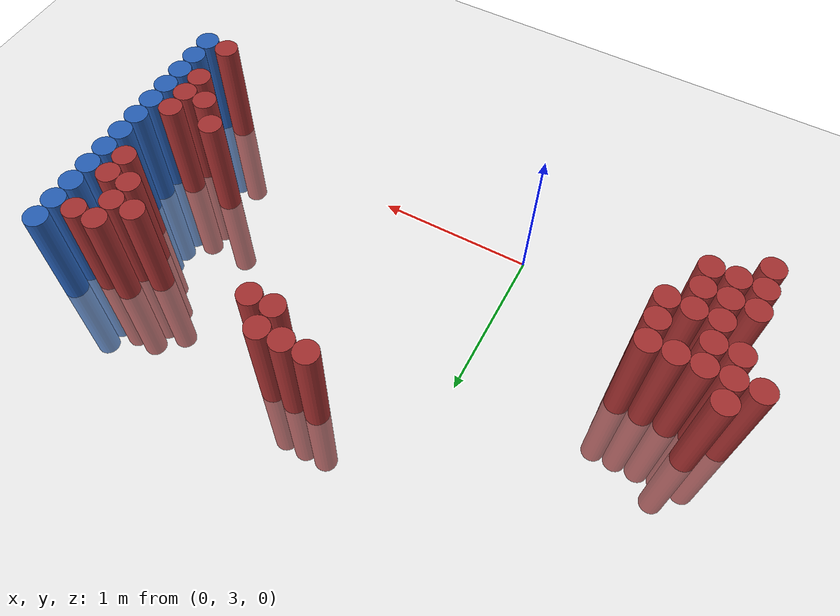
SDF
<sdf version="1.6">
 <world name="default">
  <model name="ground_plane">
   <static>1</static>
   <link name="link">
    <collision name="collision">
     <geometry><plane><normal>0 0 1</normal><size>100 100</size></plane></geometry>
     <surface><friction><ode><mu>100</mu><mu2>50</mu2></ode></friction></surface>
    </collision>
    <visual name="visual">
     <cast_shadows>0</cast_shadows>
     <geometry><plane><normal>0 0 1</normal><size>100 100</size></plane></geometry>
     <material>
      <script><uri>file://media/materials/scripts/gazebo.material</uri><name>Gazebo/Grey</name></script>
     </material>
    </visual>
   </link>
  </model>
  <model name="unit_cylinder_151">
   <static>1</static>
   <pose>-1.475000 3.625000 0.000000 0.000000 0.000000 0.000000</pose>
   <link name="link">
    <inertial>
     <mass>1</mass>
     <inertia><ixx>0.145833</ixx><ixy>0</ixy><ixz>0</ixz><iyy>0.145833</iyy><iyz>0</iyz><izz>0.125</izz></inertia>
    </inertial>
    <collision name="collision">
     <geometry><cylinder><radius>0.075000</radius><length>1.5</length></cylinder></geometry>
    </collision>
    <visual name="visual">
     <geometry><cylinder><radius>0.075000</radius><length>1.5</length></cylinder></geometry>
     <material>
      <ambient>0.648000 0.192000 0.192000 1</ambient>
      <diffuse>0.648000 0.192000 0.192000 1</diffuse>
     </material>
     <material>
      <script><name>Gazebo/Grey</name><uri>file://media/materials/scripts/gazebo.material</uri></script>
     </material>
    </visual>
   </link>
  </model>
  <model name="unit_cylinder_153">
   <static>1</static>
   <pose>-1.325000 2.875000 0.000000 0.000000 0.000000 0.000000</pose>
   <link name="link">
    <inertial>
     <mass>1</mass>
     <inertia><ixx>0.145833</ixx><ixy>0</ixy><ixz>0</ixz><iyy>0.145833</iyy><iyz>0</iyz><izz>0.125</izz></inertia>
    </inertial>
    <collision name="collision">
     <geometry><cylinder><radius>0.075000</radius><length>1.5</length></cylinder></geometry>
    </collision>
    <visual name="visual">
     <geometry><cylinder><radius>0.075000</radius><length>1.5</length></cylinder></geometry>
     <material>
      <ambient>0.648000 0.192000 0.192000 1</ambient>
      <diffuse>0.648000 0.192000 0.192000 1</diffuse>
     </material>
     <material>
      <script><name>Gazebo/Grey</name><uri>file://media/materials/scripts/gazebo.material</uri></script>
     </material>
    </visual>
   </link>
  </model>
  <model name="unit_cylinder_154">
   <static>1</static>
   <pose>-1.325000 3.025000 0.000000 0.000000 0.000000 0.000000</pose>
   <link name="link">
    <inertial>
     <mass>1</mass>
     <inertia><ixx>0.145833</ixx><ixy>0</ixy><ixz>0</ixz><iyy>0.145833</iyy><iyz>0</iyz><izz>0.125</izz></inertia>
    </inertial>
    <collision name="collision">
     <geometry><cylinder><radius>0.075000</radius><length>1.5</length></cylinder></geometry>
    </collision>
    <visual name="visual">
     <geometry><cylinder><radius>0.075000</radius><length>1.5</length></cylinder></geometry>
     <material>
      <ambient>0.648000 0.192000 0.192000 1</ambient>
      <diffuse>0.648000 0.192000 0.192000 1</diffuse>
     </material>
     <material>
      <script><name>Gazebo/Grey</name><uri>file://media/materials/scripts/gazebo.material</uri></script>
     </material>
    </visual>
   </link>
  </model>
  <model name="unit_cylinder_155">
   <static>1</static>
   <pose>-1.325000 3.175000 0.000000 0.000000 0.000000 0.000000</pose>
   <link name="link">
    <inertial>
     <mass>1</mass>
     <inertia><ixx>0.145833</ixx><ixy>0</ixy><ixz>0</ixz><iyy>0.145833</iyy><iyz>0</iyz><izz>0.125</izz></inertia>
    </inertial>
    <collision name="collision">
     <geometry><cylinder><radius>0.075000</radius><length>1.5</length></cylinder></geometry>
    </collision>
    <visual name="visual">
     <geometry><cylinder><radius>0.075000</radius><length>1.5</length></cylinder></geometry>
     <material>
      <ambient>0.648000 0.192000 0.192000 1</ambient>
      <diffuse>0.648000 0.192000 0.192000 1</diffuse>
     </material>
     <material>
      <script><name>Gazebo/Grey</name><uri>file://media/materials/scripts/gazebo.material</uri></script>
     </material>
    </visual>
   </link>
  </model>
  <model name="unit_cylinder_156">
   <static>1</static>
   <pose>-1.325000 3.475000 0.000000 0.000000 0.000000 0.000000</pose>
   <link name="link">
    <inertial>
     <mass>1</mass>
     <inertia><ixx>0.145833</ixx><ixy>0</ixy><ixz>0</ixz><iyy>0.145833</iyy><iyz>0</iyz><izz>0.125</izz></inertia>
    </inertial>
    <collision name="collision">
     <geometry><cylinder><radius>0.075000</radius><length>1.5</length></cylinder></geometry>
    </collision>
    <visual name="visual">
     <geometry><cylinder><radius>0.075000</radius><length>1.5</length></cylinder></geometry>
     <material>
      <ambient>0.648000 0.192000 0.192000 1</ambient>
      <diffuse>0.648000 0.192000 0.192000 1</diffuse>
     </material>
     <material>
      <script><name>Gazebo/Grey</name><uri>file://media/materials/scripts/gazebo.material</uri></script>
     </material>
    </visual>
   </link>
  </model>
  <model name="unit_cylinder_157">
   <static>1</static>
   <pose>-1.325000 3.625000 0.000000 0.000000 0.000000 0.000000</pose>
   <link name="link">
    <inertial>
     <mass>1</mass>
     <inertia><ixx>0.145833</ixx><ixy>0</ixy><ixz>0</ixz><iyy>0.145833</iyy><iyz>0</iyz><izz>0.125</izz></inertia>
    </inertial>
    <collision name="collision">
     <geometry><cylinder><radius>0.075000</radius><length>1.5</length></cylinder></geometry>
    </collision>
    <visual name="visual">
     <geometry><cylinder><radius>0.075000</radius><length>1.5</length></cylinder></geometry>
     <material>
      <ambient>0.648000 0.192000 0.192000 1</ambient>
      <diffuse>0.648000 0.192000 0.192000 1</diffuse>
     </material>
     <material>
      <script><name>Gazebo/Grey</name><uri>file://media/materials/scripts/gazebo.material</uri></script>
     </material>
    </visual>
   </link>
  </model>
  <model name="unit_cylinder_158">
   <static>1</static>
   <pose>-1.325000 3.775000 0.000000 0.000000 0.000000 0.000000</pose>
   <link name="link">
    <inertial>
     <mass>1</mass>
     <inertia><ixx>0.145833</ixx><ixy>0</ixy><ixz>0</ixz><iyy>0.145833</iyy><iyz>0</iyz><izz>0.125</izz></inertia>
    </inertial>
    <collision name="collision">
     <geometry><cylinder><radius>0.075000</radius><length>1.5</length></cylinder></geometry>
    </collision>
    <visual name="visual">
     <geometry><cylinder><radius>0.075000</radius><length>1.5</length></cylinder></geometry>
     <material>
      <ambient>0.648000 0.192000 0.192000 1</ambient>
      <diffuse>0.648000 0.192000 0.192000 1</diffuse>
     </material>
     <material>
      <script><name>Gazebo/Grey</name><uri>file://media/materials/scripts/gazebo.material</uri></script>
     </material>
    </visual>
   </link>
  </model>
  <model name="unit_cylinder_159">
   <static>1</static>
   <pose>-1.175000 3.025000 0.000000 0.000000 0.000000 0.000000</pose>
   <link name="link">
    <inertial>
     <mass>1</mass>
     <inertia><ixx>0.145833</ixx><ixy>0</ixy><ixz>0</ixz><iyy>0.145833</iyy><iyz>0</iyz><izz>0.125</izz></inertia>
    </inertial>
    <collision name="collision">
     <geometry><cylinder><radius>0.075000</radius><length>1.5</length></cylinder></geometry>
    </collision>
    <visual name="visual">
     <geometry><cylinder><radius>0.075000</radius><length>1.5</length></cylinder></geometry>
     <material>
      <ambient>0.648000 0.192000 0.192000 1</ambient>
      <diffuse>0.648000 0.192000 0.192000 1</diffuse>
     </material>
     <material>
      <script><name>Gazebo/Grey</name><uri>file://media/materials/scripts/gazebo.material</uri></script>
     </material>
    </visual>
   </link>
  </model>
  <model name="unit_cylinder_160">
   <static>1</static>
   <pose>-1.175000 3.175000 0.000000 0.000000 0.000000 0.000000</pose>
   <link name="link">
    <inertial>
     <mass>1</mass>
     <inertia><ixx>0.145833</ixx><ixy>0</ixy><ixz>0</ixz><iyy>0.145833</iyy><iyz>0</iyz><izz>0.125</izz></inertia>
    </inertial>
    <collision name="collision">
     <geometry><cylinder><radius>0.075000</radius><length>1.5</length></cylinder></geometry>
    </collision>
    <visual name="visual">
     <geometry><cylinder><radius>0.075000</radius><length>1.5</length></cylinder></geometry>
     <material>
      <ambient>0.648000 0.192000 0.192000 1</ambient>
      <diffuse>0.648000 0.192000 0.192000 1</diffuse>
     </material>
     <material>
      <script><name>Gazebo/Grey</name><uri>file://media/materials/scripts/gazebo.material</uri></script>
     </material>
    </visual>
   </link>
  </model>
  <model name="unit_cylinder_161">
   <static>1</static>
   <pose>-1.175000 3.325000 0.000000 0.000000 0.000000 0.000000</pose>
   <link name="link">
    <inertial>
     <mass>1</mass>
     <inertia><ixx>0.145833</ixx><ixy>0</ixy><ixz>0</ixz><iyy>0.145833</iyy><iyz>0</iyz><izz>0.125</izz></inertia>
    </inertial>
    <collision name="collision">
     <geometry><cylinder><radius>0.075000</radius><length>1.5</length></cylinder></geometry>
    </collision>
    <visual name="visual">
     <geometry><cylinder><radius>0.075000</radius><length>1.5</length></cylinder></geometry>
     <material>
      <ambient>0.648000 0.192000 0.192000 1</ambient>
      <diffuse>0.648000 0.192000 0.192000 1</diffuse>
     </material>
     <material>
      <script><name>Gazebo/Grey</name><uri>file://media/materials/scripts/gazebo.material</uri></script>
     </material>
    </visual>
   </link>
  </model>
  <model name="unit_cylinder_162">
   <static>1</static>
   <pose>-1.175000 3.475000 0.000000 0.000000 0.000000 0.000000</pose>
   <link name="link">
    <inertial>
     <mass>1</mass>
     <inertia><ixx>0.145833</ixx><ixy>0</ixy><ixz>0</ixz><iyy>0.145833</iyy><iyz>0</iyz><izz>0.125</izz></inertia>
    </inertial>
    <collision name="collision">
     <geometry><cylinder><radius>0.075000</radius><length>1.5</length></cylinder></geometry>
    </collision>
    <visual name="visual">
     <geometry><cylinder><radius>0.075000</radius><length>1.5</length></cylinder></geometry>
     <material>
      <ambient>0.648000 0.192000 0.192000 1</ambient>
      <diffuse>0.648000 0.192000 0.192000 1</diffuse>
     </material>
     <material>
      <script><name>Gazebo/Grey</name><uri>file://media/materials/scripts/gazebo.material</uri></script>
     </material>
    </visual>
   </link>
  </model>
  <model name="unit_cylinder_163">
   <static>1</static>
   <pose>-1.175000 3.625000 0.000000 0.000000 0.000000 0.000000</pose>
   <link name="link">
    <inertial>
     <mass>1</mass>
     <inertia><ixx>0.145833</ixx><ixy>0</ixy><ixz>0</ixz><iyy>0.145833</iyy><iyz>0</iyz><izz>0.125</izz></inertia>
    </inertial>
    <collision name="collision">
     <geometry><cylinder><radius>0.075000</radius><length>1.5</length></cylinder></geometry>
    </collision>
    <visual name="visual">
     <geometry><cylinder><radius>0.075000</radius><length>1.5</length></cylinder></geometry>
     <material>
      <ambient>0.648000 0.192000 0.192000 1</ambient>
      <diffuse>0.648000 0.192000 0.192000 1</diffuse>
     </material>
     <material>
      <script><name>Gazebo/Grey</name><uri>file://media/materials/scripts/gazebo.material</uri></script>
     </material>
    </visual>
   </link>
  </model>
  <model name="unit_cylinder_164">
   <static>1</static>
   <pose>-1.025000 3.025000 0.000000 0.000000 0.000000 0.000000</pose>
   <link name="link">
    <inertial>
     <mass>1</mass>
     <inertia><ixx>0.145833</ixx><ixy>0</ixy><ixz>0</ixz><iyy>0.145833</iyy><iyz>0</iyz><izz>0.125</izz></inertia>
    </inertial>
    <collision name="collision">
     <geometry><cylinder><radius>0.075000</radius><length>1.5</length></cylinder></geometry>
    </collision>
    <visual name="visual">
     <geometry><cylinder><radius>0.075000</radius><length>1.5</length></cylinder></geometry>
     <material>
      <ambient>0.648000 0.192000 0.192000 1</ambient>
      <diffuse>0.648000 0.192000 0.192000 1</diffuse>
     </material>
     <material>
      <script><name>Gazebo/Grey</name><uri>file://media/materials/scripts/gazebo.material</uri></script>
     </material>
    </visual>
   </link>
  </model>
  <model name="unit_cylinder_165">
   <static>1</static>
   <pose>-1.025000 3.175000 0.000000 0.000000 0.000000 0.000000</pose>
   <link name="link">
    <inertial>
     <mass>1</mass>
     <inertia><ixx>0.145833</ixx><ixy>0</ixy><ixz>0</ixz><iyy>0.145833</iyy><iyz>0</iyz><izz>0.125</izz></inertia>
    </inertial>
    <collision name="collision">
     <geometry><cylinder><radius>0.075000</radius><length>1.5</length></cylinder></geometry>
    </collision>
    <visual name="visual">
     <geometry><cylinder><radius>0.075000</radius><length>1.5</length></cylinder></geometry>
     <material>
      <ambient>0.648000 0.192000 0.192000 1</ambient>
      <diffuse>0.648000 0.192000 0.192000 1</diffuse>
     </material>
     <material>
      <script><name>Gazebo/Grey</name><uri>file://media/materials/scripts/gazebo.material</uri></script>
     </material>
    </visual>
   </link>
  </model>
  <model name="unit_cylinder_166">
   <static>1</static>
   <pose>-1.025000 3.325000 0.000000 0.000000 0.000000 0.000000</pose>
   <link name="link">
    <inertial>
     <mass>1</mass>
     <inertia><ixx>0.145833</ixx><ixy>0</ixy><ixz>0</ixz><iyy>0.145833</iyy><iyz>0</iyz><izz>0.125</izz></inertia>
    </inertial>
    <collision name="collision">
     <geometry><cylinder><radius>0.075000</radius><length>1.5</length></cylinder></geometry>
    </collision>
    <visual name="visual">
     <geometry><cylinder><radius>0.075000</radius><length>1.5</length></cylinder></geometry>
     <material>
      <ambient>0.648000 0.192000 0.192000 1</ambient>
      <diffuse>0.648000 0.192000 0.192000 1</diffuse>
     </material>
     <material>
      <script><name>Gazebo/Grey</name><uri>file://media/materials/scripts/gazebo.material</uri></script>
     </material>
    </visual>
   </link>
  </model>
  <model name="unit_cylinder_167">
   <static>1</static>
   <pose>-1.025000 3.625000 0.000000 0.000000 0.000000 0.000000</pose>
   <link name="link">
    <inertial>
     <mass>1</mass>
     <inertia><ixx>0.145833</ixx><ixy>0</ixy><ixz>0</ixz><iyy>0.145833</iyy><iyz>0</iyz><izz>0.125</izz></inertia>
    </inertial>
    <collision name="collision">
     <geometry><cylinder><radius>0.075000</radius><length>1.5</length></cylinder></geometry>
    </collision>
    <visual name="visual">
     <geometry><cylinder><radius>0.075000</radius><length>1.5</length></cylinder></geometry>
     <material>
      <ambient>0.648000 0.192000 0.192000 1</ambient>
      <diffuse>0.648000 0.192000 0.192000 1</diffuse>
     </material>
     <material>
      <script><name>Gazebo/Grey</name><uri>file://media/materials/scripts/gazebo.material</uri></script>
     </material>
    </visual>
   </link>
  </model>
  <model name="unit_cylinder_168">
   <static>1</static>
   <pose>-0.875000 3.325000 0.000000 0.000000 0.000000 0.000000</pose>
   <link name="link">
    <inertial>
     <mass>1</mass>
     <inertia><ixx>0.145833</ixx><ixy>0</ixy><ixz>0</ixz><iyy>0.145833</iyy><iyz>0</iyz><izz>0.125</izz></inertia>
    </inertial>
    <collision name="collision">
     <geometry><cylinder><radius>0.075000</radius><length>1.5</length></cylinder></geometry>
    </collision>
    <visual name="visual">
     <geometry><cylinder><radius>0.075000</radius><length>1.5</length></cylinder></geometry>
     <material>
      <ambient>0.648000 0.192000 0.192000 1</ambient>
      <diffuse>0.648000 0.192000 0.192000 1</diffuse>
     </material>
     <material>
      <script><name>Gazebo/Grey</name><uri>file://media/materials/scripts/gazebo.material</uri></script>
     </material>
    </visual>
   </link>
  </model>
  <model name="unit_cylinder_169">
   <static>1</static>
   <pose>-0.875000 3.475000 0.000000 0.000000 0.000000 0.000000</pose>
   <link name="link">
    <inertial>
     <mass>1</mass>
     <inertia><ixx>0.145833</ixx><ixy>0</ixy><ixz>0</ixz><iyy>0.145833</iyy><iyz>0</iyz><izz>0.125</izz></inertia>
    </inertial>
    <collision name="collision">
     <geometry><cylinder><radius>0.075000</radius><length>1.5</length></cylinder></geometry>
    </collision>
    <visual name="visual">
     <geometry><cylinder><radius>0.075000</radius><length>1.5</length></cylinder></geometry>
     <material>
      <ambient>0.648000 0.192000 0.192000 1</ambient>
      <diffuse>0.648000 0.192000 0.192000 1</diffuse>
     </material>
     <material>
      <script><name>Gazebo/Grey</name><uri>file://media/materials/scripts/gazebo.material</uri></script>
     </material>
    </visual>
   </link>
  </model>
  <model name="unit_cylinder_170">
   <static>1</static>
   <pose>-0.875000 3.625000 0.000000 0.000000 0.000000 0.000000</pose>
   <link name="link">
    <inertial>
     <mass>1</mass>
     <inertia><ixx>0.145833</ixx><ixy>0</ixy><ixz>0</ixz><iyy>0.145833</iyy><iyz>0</iyz><izz>0.125</izz></inertia>
    </inertial>
    <collision name="collision">
     <geometry><cylinder><radius>0.075000</radius><length>1.5</length></cylinder></geometry>
    </collision>
    <visual name="visual">
     <geometry><cylinder><radius>0.075000</radius><length>1.5</length></cylinder></geometry>
     <material>
      <ambient>0.648000 0.192000 0.192000 1</ambient>
      <diffuse>0.648000 0.192000 0.192000 1</diffuse>
     </material>
     <material>
      <script><name>Gazebo/Grey</name><uri>file://media/materials/scripts/gazebo.material</uri></script>
     </material>
    </visual>
   </link>
  </model>
  <model name="unit_cylinder_188">
   <static>1</static>
   <pose>0.625000 4.525000 0.000000 0.000000 0.000000 0.000000</pose>
   <link name="link">
    <inertial>
     <mass>1</mass>
     <inertia><ixx>0.145833</ixx><ixy>0</ixy><ixz>0</ixz><iyy>0.145833</iyy><iyz>0</iyz><izz>0.125</izz></inertia>
    </inertial>
    <collision name="collision">
     <geometry><cylinder><radius>0.075000</radius><length>1.5</length></cylinder></geometry>
    </collision>
    <visual name="visual">
     <geometry><cylinder><radius>0.075000</radius><length>1.5</length></cylinder></geometry>
     <material>
      <ambient>0.648000 0.192000 0.192000 1</ambient>
      <diffuse>0.648000 0.192000 0.192000 1</diffuse>
     </material>
     <material>
      <script><name>Gazebo/Grey</name><uri>file://media/materials/scripts/gazebo.material</uri></script>
     </material>
    </visual>
   </link>
  </model>
  <model name="unit_cylinder_189">
   <static>1</static>
   <pose>0.775000 4.525000 0.000000 0.000000 0.000000 0.000000</pose>
   <link name="link">
    <inertial>
     <mass>1</mass>
     <inertia><ixx>0.145833</ixx><ixy>0</ixy><ixz>0</ixz><iyy>0.145833</iyy><iyz>0</iyz><izz>0.125</izz></inertia>
    </inertial>
    <collision name="collision">
     <geometry><cylinder><radius>0.075000</radius><length>1.5</length></cylinder></geometry>
    </collision>
    <visual name="visual">
     <geometry><cylinder><radius>0.075000</radius><length>1.5</length></cylinder></geometry>
     <material>
      <ambient>0.648000 0.192000 0.192000 1</ambient>
      <diffuse>0.648000 0.192000 0.192000 1</diffuse>
     </material>
     <material>
      <script><name>Gazebo/Grey</name><uri>file://media/materials/scripts/gazebo.material</uri></script>
     </material>
    </visual>
   </link>
  </model>
  <model name="unit_cylinder_190">
   <static>1</static>
   <pose>0.925000 4.375000 0.000000 0.000000 0.000000 0.000000</pose>
   <link name="link">
    <inertial>
     <mass>1</mass>
     <inertia><ixx>0.145833</ixx><ixy>0</ixy><ixz>0</ixz><iyy>0.145833</iyy><iyz>0</iyz><izz>0.125</izz></inertia>
    </inertial>
    <collision name="collision">
     <geometry><cylinder><radius>0.075000</radius><length>1.5</length></cylinder></geometry>
    </collision>
    <visual name="visual">
     <geometry><cylinder><radius>0.075000</radius><length>1.5</length></cylinder></geometry>
     <material>
      <ambient>0.648000 0.192000 0.192000 1</ambient>
      <diffuse>0.648000 0.192000 0.192000 1</diffuse>
     </material>
     <material>
      <script><name>Gazebo/Grey</name><uri>file://media/materials/scripts/gazebo.material</uri></script>
     </material>
    </visual>
   </link>
  </model>
  <model name="unit_cylinder_191">
   <static>1</static>
   <pose>0.925000 4.525000 0.000000 0.000000 0.000000 0.000000</pose>
   <link name="link">
    <inertial>
     <mass>1</mass>
     <inertia><ixx>0.145833</ixx><ixy>0</ixy><ixz>0</ixz><iyy>0.145833</iyy><iyz>0</iyz><izz>0.125</izz></inertia>
    </inertial>
    <collision name="collision">
     <geometry><cylinder><radius>0.075000</radius><length>1.5</length></cylinder></geometry>
    </collision>
    <visual name="visual">
     <geometry><cylinder><radius>0.075000</radius><length>1.5</length></cylinder></geometry>
     <material>
      <ambient>0.648000 0.192000 0.192000 1</ambient>
      <diffuse>0.648000 0.192000 0.192000 1</diffuse>
     </material>
     <material>
      <script><name>Gazebo/Grey</name><uri>file://media/materials/scripts/gazebo.material</uri></script>
     </material>
    </visual>
   </link>
  </model>
  <model name="unit_cylinder_192">
   <static>1</static>
   <pose>1.075000 4.375000 0.000000 0.000000 0.000000 0.000000</pose>
   <link name="link">
    <inertial>
     <mass>1</mass>
     <inertia><ixx>0.145833</ixx><ixy>0</ixy><ixz>0</ixz><iyy>0.145833</iyy><iyz>0</iyz><izz>0.125</izz></inertia>
    </inertial>
    <collision name="collision">
     <geometry><cylinder><radius>0.075000</radius><length>1.5</length></cylinder></geometry>
    </collision>
    <visual name="visual">
     <geometry><cylinder><radius>0.075000</radius><length>1.5</length></cylinder></geometry>
     <material>
      <ambient>0.648000 0.192000 0.192000 1</ambient>
      <diffuse>0.648000 0.192000 0.192000 1</diffuse>
     </material>
     <material>
      <script><name>Gazebo/Grey</name><uri>file://media/materials/scripts/gazebo.material</uri></script>
     </material>
    </visual>
   </link>
  </model>
  <model name="unit_cylinder_200">
   <static>1</static>
   <pose>1.975000 3.475000 0.000000 0.000000 0.000000 0.000000</pose>
   <link name="link">
    <inertial>
     <mass>1</mass>
     <inertia><ixx>0.145833</ixx><ixy>0</ixy><ixz>0</ixz><iyy>0.145833</iyy><iyz>0</iyz><izz>0.125</izz></inertia>
    </inertial>
    <collision name="collision">
     <geometry><cylinder><radius>0.075000</radius><length>1.5</length></cylinder></geometry>
    </collision>
    <visual name="visual">
     <geometry><cylinder><radius>0.075000</radius><length>1.5</length></cylinder></geometry>
     <material>
      <ambient>0.648000 0.192000 0.192000 1</ambient>
      <diffuse>0.648000 0.192000 0.192000 1</diffuse>
     </material>
     <material>
      <script><name>Gazebo/Grey</name><uri>file://media/materials/scripts/gazebo.material</uri></script>
     </material>
    </visual>
   </link>
  </model>
  <model name="unit_cylinder_201">
   <static>1</static>
   <pose>1.975000 4.225000 0.000000 0.000000 0.000000 0.000000</pose>
   <link name="link">
    <inertial>
     <mass>1</mass>
     <inertia><ixx>0.145833</ixx><ixy>0</ixy><ixz>0</ixz><iyy>0.145833</iyy><iyz>0</iyz><izz>0.125</izz></inertia>
    </inertial>
    <collision name="collision">
     <geometry><cylinder><radius>0.075000</radius><length>1.5</length></cylinder></geometry>
    </collision>
    <visual name="visual">
     <geometry><cylinder><radius>0.075000</radius><length>1.5</length></cylinder></geometry>
     <material>
      <ambient>0.648000 0.192000 0.192000 1</ambient>
      <diffuse>0.648000 0.192000 0.192000 1</diffuse>
     </material>
     <material>
      <script><name>Gazebo/Grey</name><uri>file://media/materials/scripts/gazebo.material</uri></script>
     </material>
    </visual>
   </link>
  </model>
  <model name="unit_cylinder_203">
   <static>1</static>
   <pose>2.125000 3.325000 0.000000 0.000000 0.000000 0.000000</pose>
   <link name="link">
    <inertial>
     <mass>1</mass>
     <inertia><ixx>0.145833</ixx><ixy>0</ixy><ixz>0</ixz><iyy>0.145833</iyy><iyz>0</iyz><izz>0.125</izz></inertia>
    </inertial>
    <collision name="collision">
     <geometry><cylinder><radius>0.075000</radius><length>1.5</length></cylinder></geometry>
    </collision>
    <visual name="visual">
     <geometry><cylinder><radius>0.075000</radius><length>1.5</length></cylinder></geometry>
     <material>
      <ambient>0.648000 0.192000 0.192000 1</ambient>
      <diffuse>0.648000 0.192000 0.192000 1</diffuse>
     </material>
     <material>
      <script><name>Gazebo/Grey</name><uri>file://media/materials/scripts/gazebo.material</uri></script>
     </material>
    </visual>
   </link>
  </model>
  <model name="unit_cylinder_204">
   <static>1</static>
   <pose>2.125000 4.075000 0.000000 0.000000 0.000000 0.000000</pose>
   <link name="link">
    <inertial>
     <mass>1</mass>
     <inertia><ixx>0.145833</ixx><ixy>0</ixy><ixz>0</ixz><iyy>0.145833</iyy><iyz>0</iyz><izz>0.125</izz></inertia>
    </inertial>
    <collision name="collision">
     <geometry><cylinder><radius>0.075000</radius><length>1.5</length></cylinder></geometry>
    </collision>
    <visual name="visual">
     <geometry><cylinder><radius>0.075000</radius><length>1.5</length></cylinder></geometry>
     <material>
      <ambient>0.648000 0.192000 0.192000 1</ambient>
      <diffuse>0.648000 0.192000 0.192000 1</diffuse>
     </material>
     <material>
      <script><name>Gazebo/Grey</name><uri>file://media/materials/scripts/gazebo.material</uri></script>
     </material>
    </visual>
   </link>
  </model>
  <model name="unit_cylinder_205">
   <static>1</static>
   <pose>2.125000 4.225000 0.000000 0.000000 0.000000 0.000000</pose>
   <link name="link">
    <inertial>
     <mass>1</mass>
     <inertia><ixx>0.145833</ixx><ixy>0</ixy><ixz>0</ixz><iyy>0.145833</iyy><iyz>0</iyz><izz>0.125</izz></inertia>
    </inertial>
    <collision name="collision">
     <geometry><cylinder><radius>0.075000</radius><length>1.5</length></cylinder></geometry>
    </collision>
    <visual name="visual">
     <geometry><cylinder><radius>0.075000</radius><length>1.5</length></cylinder></geometry>
     <material>
      <ambient>0.648000 0.192000 0.192000 1</ambient>
      <diffuse>0.648000 0.192000 0.192000 1</diffuse>
     </material>
     <material>
      <script><name>Gazebo/Grey</name><uri>file://media/materials/scripts/gazebo.material</uri></script>
     </material>
    </visual>
   </link>
  </model>
  <model name="unit_cylinder_206">
   <static>1</static>
   <pose>2.125000 4.375000 0.000000 0.000000 0.000000 0.000000</pose>
   <link name="link">
    <inertial>
     <mass>1</mass>
     <inertia><ixx>0.145833</ixx><ixy>0</ixy><ixz>0</ixz><iyy>0.145833</iyy><iyz>0</iyz><izz>0.125</izz></inertia>
    </inertial>
    <collision name="collision">
     <geometry><cylinder><radius>0.075000</radius><length>1.5</length></cylinder></geometry>
    </collision>
    <visual name="visual">
     <geometry><cylinder><radius>0.075000</radius><length>1.5</length></cylinder></geometry>
     <material>
      <ambient>0.648000 0.192000 0.192000 1</ambient>
      <diffuse>0.648000 0.192000 0.192000 1</diffuse>
     </material>
     <material>
      <script><name>Gazebo/Grey</name><uri>file://media/materials/scripts/gazebo.material</uri></script>
     </material>
    </visual>
   </link>
  </model>
  <model name="unit_cylinder_211">
   <static>1</static>
   <pose>2.275000 2.875000 0.000000 0.000000 0.000000 0.000000</pose>
   <link name="link">
    <inertial>
     <mass>1</mass>
     <inertia><ixx>0.145833</ixx><ixy>0</ixy><ixz>0</ixz><iyy>0.145833</iyy><iyz>0</iyz><izz>0.125</izz></inertia>
    </inertial>
    <collision name="collision">
     <geometry><cylinder><radius>0.075000</radius><length>1.5</length></cylinder></geometry>
    </collision>
    <visual name="visual">
     <geometry><cylinder><radius>0.075000</radius><length>1.5</length></cylinder></geometry>
     <material>
      <ambient>0.648000 0.192000 0.192000 1</ambient>
      <diffuse>0.648000 0.192000 0.192000 1</diffuse>
     </material>
     <material>
      <script><name>Gazebo/Grey</name><uri>file://media/materials/scripts/gazebo.material</uri></script>
     </material>
    </visual>
   </link>
  </model>
  <model name="unit_cylinder_212">
   <static>1</static>
   <pose>2.275000 3.175000 0.000000 0.000000 0.000000 0.000000</pose>
   <link name="link">
    <inertial>
     <mass>1</mass>
     <inertia><ixx>0.145833</ixx><ixy>0</ixy><ixz>0</ixz><iyy>0.145833</iyy><iyz>0</iyz><izz>0.125</izz></inertia>
    </inertial>
    <collision name="collision">
     <geometry><cylinder><radius>0.075000</radius><length>1.5</length></cylinder></geometry>
    </collision>
    <visual name="visual">
     <geometry><cylinder><radius>0.075000</radius><length>1.5</length></cylinder></geometry>
     <material>
      <ambient>0.648000 0.192000 0.192000 1</ambient>
      <diffuse>0.648000 0.192000 0.192000 1</diffuse>
     </material>
     <material>
      <script><name>Gazebo/Grey</name><uri>file://media/materials/scripts/gazebo.material</uri></script>
     </material>
    </visual>
   </link>
  </model>
  <model name="unit_cylinder_213">
   <static>1</static>
   <pose>2.275000 3.325000 0.000000 0.000000 0.000000 0.000000</pose>
   <link name="link">
    <inertial>
     <mass>1</mass>
     <inertia><ixx>0.145833</ixx><ixy>0</ixy><ixz>0</ixz><iyy>0.145833</iyy><iyz>0</iyz><izz>0.125</izz></inertia>
    </inertial>
    <collision name="collision">
     <geometry><cylinder><radius>0.075000</radius><length>1.5</length></cylinder></geometry>
    </collision>
    <visual name="visual">
     <geometry><cylinder><radius>0.075000</radius><length>1.5</length></cylinder></geometry>
     <material>
      <ambient>0.648000 0.192000 0.192000 1</ambient>
      <diffuse>0.648000 0.192000 0.192000 1</diffuse>
     </material>
     <material>
      <script><name>Gazebo/Grey</name><uri>file://media/materials/scripts/gazebo.material</uri></script>
     </material>
    </visual>
   </link>
  </model>
  <model name="unit_cylinder_214">
   <static>1</static>
   <pose>2.275000 3.475000 0.000000 0.000000 0.000000 0.000000</pose>
   <link name="link">
    <inertial>
     <mass>1</mass>
     <inertia><ixx>0.145833</ixx><ixy>0</ixy><ixz>0</ixz><iyy>0.145833</iyy><iyz>0</iyz><izz>0.125</izz></inertia>
    </inertial>
    <collision name="collision">
     <geometry><cylinder><radius>0.075000</radius><length>1.5</length></cylinder></geometry>
    </collision>
    <visual name="visual">
     <geometry><cylinder><radius>0.075000</radius><length>1.5</length></cylinder></geometry>
     <material>
      <ambient>0.648000 0.192000 0.192000 1</ambient>
      <diffuse>0.648000 0.192000 0.192000 1</diffuse>
     </material>
     <material>
      <script><name>Gazebo/Grey</name><uri>file://media/materials/scripts/gazebo.material</uri></script>
     </material>
    </visual>
   </link>
  </model>
  <model name="unit_cylinder_215">
   <static>1</static>
   <pose>2.275000 3.925000 0.000000 0.000000 0.000000 0.000000</pose>
   <link name="link">
    <inertial>
     <mass>1</mass>
     <inertia><ixx>0.145833</ixx><ixy>0</ixy><ixz>0</ixz><iyy>0.145833</iyy><iyz>0</iyz><izz>0.125</izz></inertia>
    </inertial>
    <collision name="collision">
     <geometry><cylinder><radius>0.075000</radius><length>1.5</length></cylinder></geometry>
    </collision>
    <visual name="visual">
     <geometry><cylinder><radius>0.075000</radius><length>1.5</length></cylinder></geometry>
     <material>
      <ambient>0.648000 0.192000 0.192000 1</ambient>
      <diffuse>0.648000 0.192000 0.192000 1</diffuse>
     </material>
     <material>
      <script><name>Gazebo/Grey</name><uri>file://media/materials/scripts/gazebo.material</uri></script>
     </material>
    </visual>
   </link>
  </model>
  <model name="unit_cylinder_216">
   <static>1</static>
   <pose>2.275000 4.075000 0.000000 0.000000 0.000000 0.000000</pose>
   <link name="link">
    <inertial>
     <mass>1</mass>
     <inertia><ixx>0.145833</ixx><ixy>0</ixy><ixz>0</ixz><iyy>0.145833</iyy><iyz>0</iyz><izz>0.125</izz></inertia>
    </inertial>
    <collision name="collision">
     <geometry><cylinder><radius>0.075000</radius><length>1.5</length></cylinder></geometry>
    </collision>
    <visual name="visual">
     <geometry><cylinder><radius>0.075000</radius><length>1.5</length></cylinder></geometry>
     <material>
      <ambient>0.648000 0.192000 0.192000 1</ambient>
      <diffuse>0.648000 0.192000 0.192000 1</diffuse>
     </material>
     <material>
      <script><name>Gazebo/Grey</name><uri>file://media/materials/scripts/gazebo.material</uri></script>
     </material>
    </visual>
   </link>
  </model>
  <model name="unit_cylinder_217">
   <static>1</static>
   <pose>2.275000 4.375000 0.000000 0.000000 0.000000 0.000000</pose>
   <link name="link">
    <inertial>
     <mass>1</mass>
     <inertia><ixx>0.145833</ixx><ixy>0</ixy><ixz>0</ixz><iyy>0.145833</iyy><iyz>0</iyz><izz>0.125</izz></inertia>
    </inertial>
    <collision name="collision">
     <geometry><cylinder><radius>0.075000</radius><length>1.5</length></cylinder></geometry>
    </collision>
    <visual name="visual">
     <geometry><cylinder><radius>0.075000</radius><length>1.5</length></cylinder></geometry>
     <material>
      <ambient>0.648000 0.192000 0.192000 1</ambient>
      <diffuse>0.648000 0.192000 0.192000 1</diffuse>
     </material>
     <material>
      <script><name>Gazebo/Grey</name><uri>file://media/materials/scripts/gazebo.material</uri></script>
     </material>
    </visual>
   </link>
  </model>
  <model name="unit_cylinder_236">
   <static>1</static>
   <pose>2.425000 2.875000 0.000000 0.000000 0.000000 0.000000</pose>
   <link name="link">
    <inertial>
     <mass>1</mass>
     <inertia><ixx>0.145833</ixx><ixy>0</ixy><ixz>0</ixz><iyy>0.145833</iyy><iyz>0</iyz><izz>0.125</izz></inertia>
    </inertial>
    <collision name="collision">
     <geometry><cylinder><radius>0.075000</radius><length>1.5</length></cylinder></geometry>
    </collision>
    <visual name="visual">
     <geometry><cylinder><radius>0.075000</radius><length>1.5</length></cylinder></geometry>
     <material>
      <ambient>0.152000 0.379000 0.720000 1</ambient>
      <diffuse>0.152000 0.379000 0.720000 1</diffuse>
     </material>
     <material>
      <script><name>Gazebo/Grey</name><uri>file://media/materials/scripts/gazebo.material</uri></script>
     </material>
    </visual>
   </link>
  </model>
  <model name="unit_cylinder_237">
   <static>1</static>
   <pose>2.425000 3.025000 0.000000 0.000000 0.000000 0.000000</pose>
   <link name="link">
    <inertial>
     <mass>1</mass>
     <inertia><ixx>0.145833</ixx><ixy>0</ixy><ixz>0</ixz><iyy>0.145833</iyy><iyz>0</iyz><izz>0.125</izz></inertia>
    </inertial>
    <collision name="collision">
     <geometry><cylinder><radius>0.075000</radius><length>1.5</length></cylinder></geometry>
    </collision>
    <visual name="visual">
     <geometry><cylinder><radius>0.075000</radius><length>1.5</length></cylinder></geometry>
     <material>
      <ambient>0.152000 0.379000 0.720000 1</ambient>
      <diffuse>0.152000 0.379000 0.720000 1</diffuse>
     </material>
     <material>
      <script><name>Gazebo/Grey</name><uri>file://media/materials/scripts/gazebo.material</uri></script>
     </material>
    </visual>
   </link>
  </model>
  <model name="unit_cylinder_238">
   <static>1</static>
   <pose>2.425000 3.175000 0.000000 0.000000 0.000000 0.000000</pose>
   <link name="link">
    <inertial>
     <mass>1</mass>
     <inertia><ixx>0.145833</ixx><ixy>0</ixy><ixz>0</ixz><iyy>0.145833</iyy><iyz>0</iyz><izz>0.125</izz></inertia>
    </inertial>
    <collision name="collision">
     <geometry><cylinder><radius>0.075000</radius><length>1.5</length></cylinder></geometry>
    </collision>
    <visual name="visual">
     <geometry><cylinder><radius>0.075000</radius><length>1.5</length></cylinder></geometry>
     <material>
      <ambient>0.152000 0.379000 0.720000 1</ambient>
      <diffuse>0.152000 0.379000 0.720000 1</diffuse>
     </material>
     <material>
      <script><name>Gazebo/Grey</name><uri>file://media/materials/scripts/gazebo.material</uri></script>
     </material>
    </visual>
   </link>
  </model>
  <model name="unit_cylinder_239">
   <static>1</static>
   <pose>2.425000 3.325000 0.000000 0.000000 0.000000 0.000000</pose>
   <link name="link">
    <inertial>
     <mass>1</mass>
     <inertia><ixx>0.145833</ixx><ixy>0</ixy><ixz>0</ixz><iyy>0.145833</iyy><iyz>0</iyz><izz>0.125</izz></inertia>
    </inertial>
    <collision name="collision">
     <geometry><cylinder><radius>0.075000</radius><length>1.5</length></cylinder></geometry>
    </collision>
    <visual name="visual">
     <geometry><cylinder><radius>0.075000</radius><length>1.5</length></cylinder></geometry>
     <material>
      <ambient>0.152000 0.379000 0.720000 1</ambient>
      <diffuse>0.152000 0.379000 0.720000 1</diffuse>
     </material>
     <material>
      <script><name>Gazebo/Grey</name><uri>file://media/materials/scripts/gazebo.material</uri></script>
     </material>
    </visual>
   </link>
  </model>
  <model name="unit_cylinder_240">
   <static>1</static>
   <pose>2.425000 3.475000 0.000000 0.000000 0.000000 0.000000</pose>
   <link name="link">
    <inertial>
     <mass>1</mass>
     <inertia><ixx>0.145833</ixx><ixy>0</ixy><ixz>0</ixz><iyy>0.145833</iyy><iyz>0</iyz><izz>0.125</izz></inertia>
    </inertial>
    <collision name="collision">
     <geometry><cylinder><radius>0.075000</radius><length>1.5</length></cylinder></geometry>
    </collision>
    <visual name="visual">
     <geometry><cylinder><radius>0.075000</radius><length>1.5</length></cylinder></geometry>
     <material>
      <ambient>0.152000 0.379000 0.720000 1</ambient>
      <diffuse>0.152000 0.379000 0.720000 1</diffuse>
     </material>
     <material>
      <script><name>Gazebo/Grey</name><uri>file://media/materials/scripts/gazebo.material</uri></script>
     </material>
    </visual>
   </link>
  </model>
  <model name="unit_cylinder_241">
   <static>1</static>
   <pose>2.425000 3.625000 0.000000 0.000000 0.000000 0.000000</pose>
   <link name="link">
    <inertial>
     <mass>1</mass>
     <inertia><ixx>0.145833</ixx><ixy>0</ixy><ixz>0</ixz><iyy>0.145833</iyy><iyz>0</iyz><izz>0.125</izz></inertia>
    </inertial>
    <collision name="collision">
     <geometry><cylinder><radius>0.075000</radius><length>1.5</length></cylinder></geometry>
    </collision>
    <visual name="visual">
     <geometry><cylinder><radius>0.075000</radius><length>1.5</length></cylinder></geometry>
     <material>
      <ambient>0.152000 0.379000 0.720000 1</ambient>
      <diffuse>0.152000 0.379000 0.720000 1</diffuse>
     </material>
     <material>
      <script><name>Gazebo/Grey</name><uri>file://media/materials/scripts/gazebo.material</uri></script>
     </material>
    </visual>
   </link>
  </model>
  <model name="unit_cylinder_242">
   <static>1</static>
   <pose>2.425000 3.775000 0.000000 0.000000 0.000000 0.000000</pose>
   <link name="link">
    <inertial>
     <mass>1</mass>
     <inertia><ixx>0.145833</ixx><ixy>0</ixy><ixz>0</ixz><iyy>0.145833</iyy><iyz>0</iyz><izz>0.125</izz></inertia>
    </inertial>
    <collision name="collision">
     <geometry><cylinder><radius>0.075000</radius><length>1.5</length></cylinder></geometry>
    </collision>
    <visual name="visual">
     <geometry><cylinder><radius>0.075000</radius><length>1.5</length></cylinder></geometry>
     <material>
      <ambient>0.152000 0.379000 0.720000 1</ambient>
      <diffuse>0.152000 0.379000 0.720000 1</diffuse>
     </material>
     <material>
      <script><name>Gazebo/Grey</name><uri>file://media/materials/scripts/gazebo.material</uri></script>
     </material>
    </visual>
   </link>
  </model>
  <model name="unit_cylinder_243">
   <static>1</static>
   <pose>2.425000 3.925000 0.000000 0.000000 0.000000 0.000000</pose>
   <link name="link">
    <inertial>
     <mass>1</mass>
     <inertia><ixx>0.145833</ixx><ixy>0</ixy><ixz>0</ixz><iyy>0.145833</iyy><iyz>0</iyz><izz>0.125</izz></inertia>
    </inertial>
    <collision name="collision">
     <geometry><cylinder><radius>0.075000</radius><length>1.5</length></cylinder></geometry>
    </collision>
    <visual name="visual">
     <geometry><cylinder><radius>0.075000</radius><length>1.5</length></cylinder></geometry>
     <material>
      <ambient>0.152000 0.379000 0.720000 1</ambient>
      <diffuse>0.152000 0.379000 0.720000 1</diffuse>
     </material>
     <material>
      <script><name>Gazebo/Grey</name><uri>file://media/materials/scripts/gazebo.material</uri></script>
     </material>
    </visual>
   </link>
  </model>
  <model name="unit_cylinder_244">
   <static>1</static>
   <pose>2.425000 4.075000 0.000000 0.000000 0.000000 0.000000</pose>
   <link name="link">
    <inertial>
     <mass>1</mass>
     <inertia><ixx>0.145833</ixx><ixy>0</ixy><ixz>0</ixz><iyy>0.145833</iyy><iyz>0</iyz><izz>0.125</izz></inertia>
    </inertial>
    <collision name="collision">
     <geometry><cylinder><radius>0.075000</radius><length>1.5</length></cylinder></geometry>
    </collision>
    <visual name="visual">
     <geometry><cylinder><radius>0.075000</radius><length>1.5</length></cylinder></geometry>
     <material>
      <ambient>0.152000 0.379000 0.720000 1</ambient>
      <diffuse>0.152000 0.379000 0.720000 1</diffuse>
     </material>
     <material>
      <script><name>Gazebo/Grey</name><uri>file://media/materials/scripts/gazebo.material</uri></script>
     </material>
    </visual>
   </link>
  </model>
  <model name="unit_cylinder_245">
   <static>1</static>
   <pose>2.425000 4.225000 0.000000 0.000000 0.000000 0.000000</pose>
   <link name="link">
    <inertial>
     <mass>1</mass>
     <inertia><ixx>0.145833</ixx><ixy>0</ixy><ixz>0</ixz><iyy>0.145833</iyy><iyz>0</iyz><izz>0.125</izz></inertia>
    </inertial>
    <collision name="collision">
     <geometry><cylinder><radius>0.075000</radius><length>1.5</length></cylinder></geometry>
    </collision>
    <visual name="visual">
     <geometry><cylinder><radius>0.075000</radius><length>1.5</length></cylinder></geometry>
     <material>
      <ambient>0.152000 0.379000 0.720000 1</ambient>
      <diffuse>0.152000 0.379000 0.720000 1</diffuse>
     </material>
     <material>
      <script><name>Gazebo/Grey</name><uri>file://media/materials/scripts/gazebo.material</uri></script>
     </material>
    </visual>
   </link>
  </model>
  <model name="unit_cylinder_246">
   <static>1</static>
   <pose>2.425000 4.375000 0.000000 0.000000 0.000000 0.000000</pose>
   <link name="link">
    <inertial>
     <mass>1</mass>
     <inertia><ixx>0.145833</ixx><ixy>0</ixy><ixz>0</ixz><iyy>0.145833</iyy><iyz>0</iyz><izz>0.125</izz></inertia>
    </inertial>
    <collision name="collision">
     <geometry><cylinder><radius>0.075000</radius><length>1.5</length></cylinder></geometry>
    </collision>
    <visual name="visual">
     <geometry><cylinder><radius>0.075000</radius><length>1.5</length></cylinder></geometry>
     <material>
      <ambient>0.152000 0.379000 0.720000 1</ambient>
      <diffuse>0.152000 0.379000 0.720000 1</diffuse>
     </material>
     <material>
      <script><name>Gazebo/Grey</name><uri>file://media/materials/scripts/gazebo.material</uri></script>
     </material>
    </visual>
   </link>
  </model>
  <model name="unit_cylinder_247">
   <static>1</static>
   <pose>2.425000 4.525000 0.000000 0.000000 0.000000 0.000000</pose>
   <link name="link">
    <inertial>
     <mass>1</mass>
     <inertia><ixx>0.145833</ixx><ixy>0</ixy><ixz>0</ixz><iyy>0.145833</iyy><iyz>0</iyz><izz>0.125</izz></inertia>
    </inertial>
    <collision name="collision">
     <geometry><cylinder><radius>0.075000</radius><length>1.5</length></cylinder></geometry>
    </collision>
    <visual name="visual">
     <geometry><cylinder><radius>0.075000</radius><length>1.5</length></cylinder></geometry>
     <material>
      <ambient>0.152000 0.379000 0.720000 1</ambient>
      <diffuse>0.152000 0.379000 0.720000 1</diffuse>
     </material>
     <material>
      <script><name>Gazebo/Grey</name><uri>file://media/materials/scripts/gazebo.material</uri></script>
     </material>
    </visual>
   </link>
  </model>
 </world>
</sdf>
